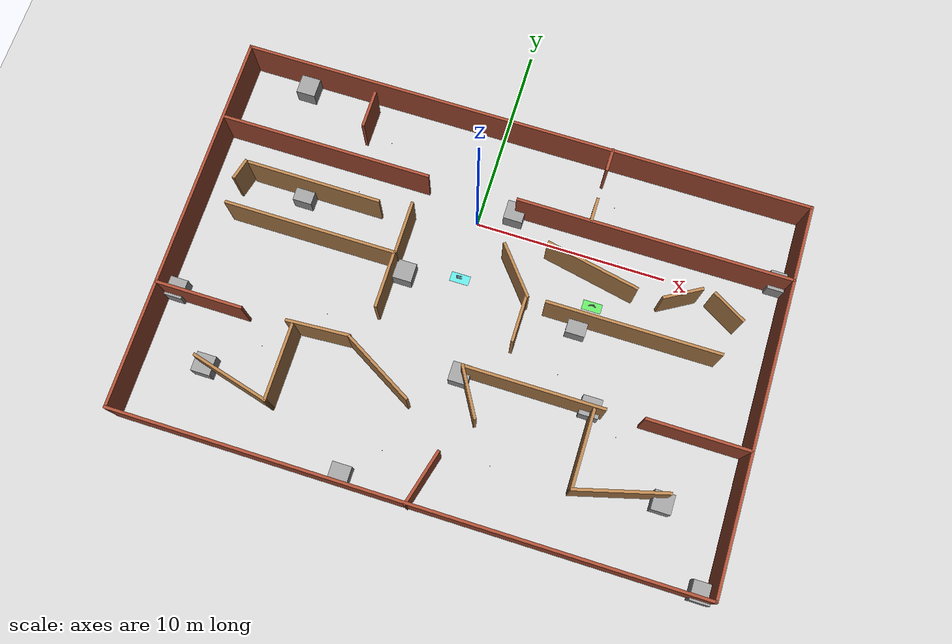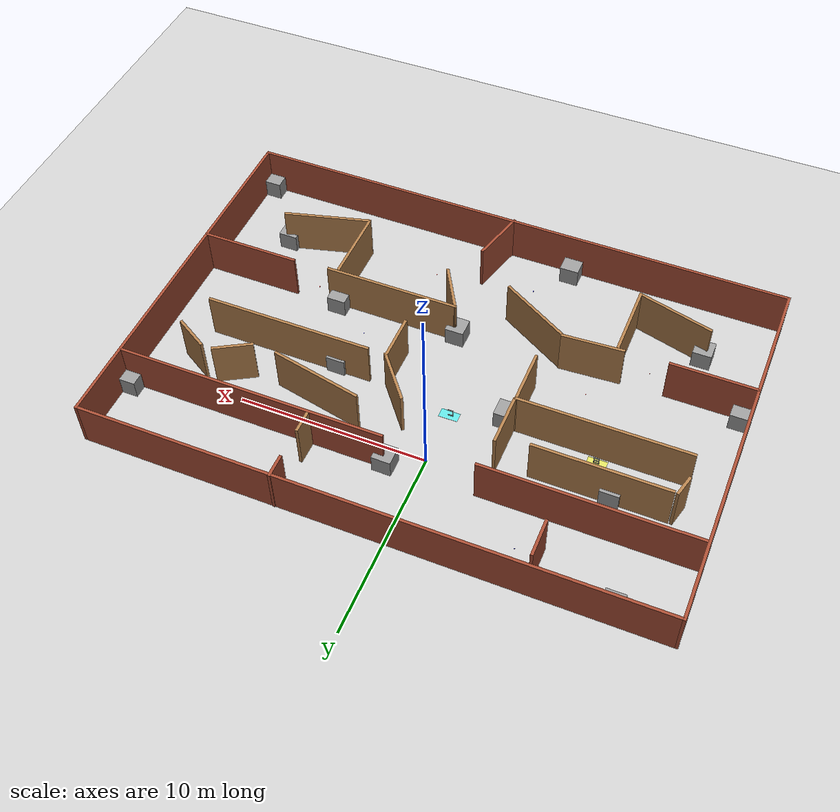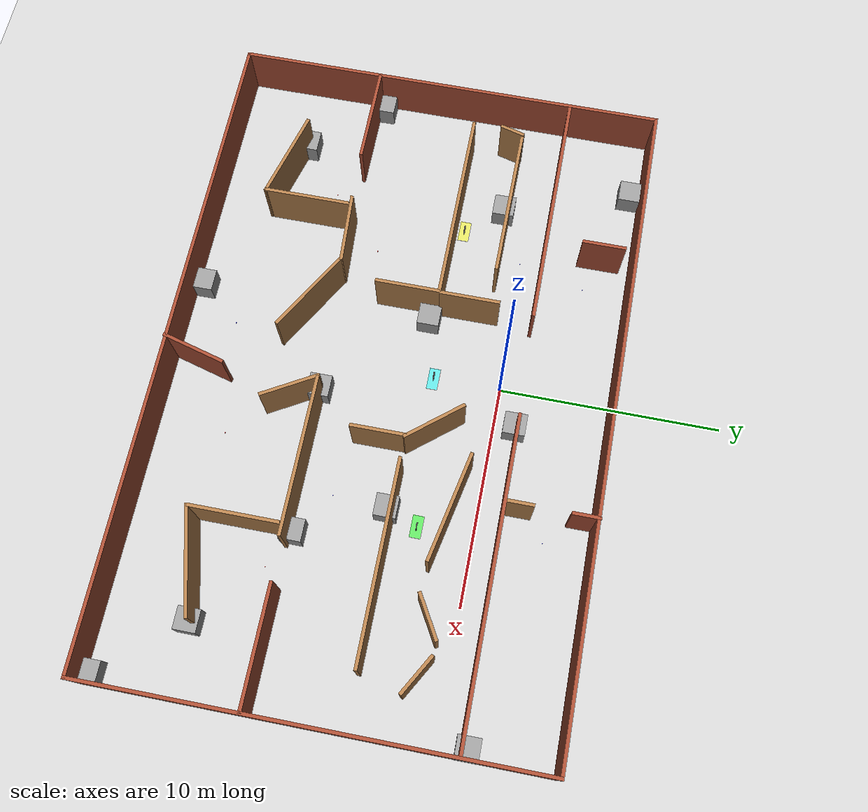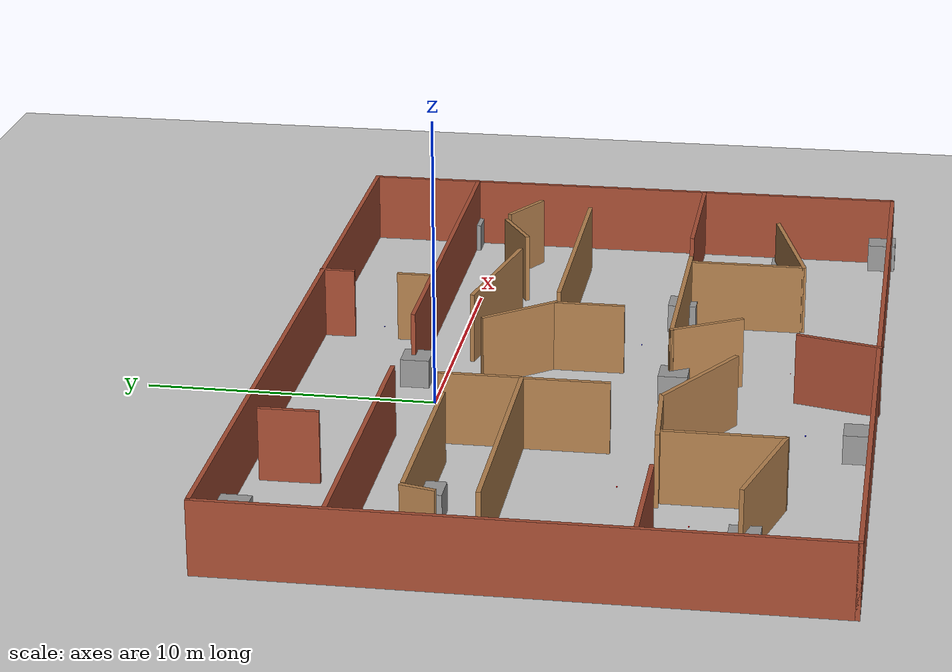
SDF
<sdf version="1.7">
 <world name="my_world">
  <model name="ground_plane">
   <static>1</static>
   <link name="link">
    <collision name="collision">
     <geometry><plane><normal>0 0 1</normal><size>100 100</size></plane></geometry>
     <surface>
      <contact><collide_bitmask>65535</collide_bitmask></contact>
      <friction><ode><mu>100</mu><mu2>50</mu2></ode></friction>
     </surface>
    </collision>
    <visual name="visual">
     <cast_shadows>0</cast_shadows>
     <geometry><plane><normal>0 0 1</normal><size>100 100</size></plane></geometry>
     <material>
      <script><uri>file://media/materials/scripts/gazebo.material</uri><name>Gazebo/Grey</name></script>
     </material>
    </visual>
   </link>
  </model>
  <light name="sun" type="directional">
   <pose>0 0 10 0 -0 0</pose>
   <diffuse>0.8 0.8 0.8 1</diffuse>
   <specular>0.2 0.2 0.2 1</specular>
   <attenuation>
    <range>1000</range>
    <constant>0.9</constant>
    <linear>0.01</linear>
    <quadratic>0.001</quadratic>
   </attenuation>
   <direction>-0.5 0.1 -0.9</direction>
   <spot><inner_angle>0</inner_angle><outer_angle>0</outer_angle><falloff>0</falloff></spot>
  </light>
  <model name="officeroom">
   <pose>0.9981 -4.92976 0 0 -0 0</pose>
   <link name="Wall_10">
    <collision name="Wall_10_Collision">
     <geometry><box><size>20 0.15 2.5</size></box></geometry>
     <pose>0 0 1.25 0 -0 0</pose>
    </collision>
    <visual name="Wall_10_Visual">
     <pose>0 0 1.25 0 -0 0</pose>
     <geometry><box><size>20 0.15 2.5</size></box></geometry>
     <material>
      <script><uri>file://media/materials/scripts/gazebo.material</uri><name>Gazebo/Bricks</name></script>
      <ambient>1 1 1 1</ambient>
     </material>
     <meta><layer>0</layer></meta>
    </visual>
    <pose>14.925 0.014919 0 0 -0 -1.57081</pose>
   </link>
   <link name="Wall_107">
    <collision name="Wall_107_Collision">
     <geometry><box><size>3.27854 0.15 2.5</size></box></geometry>
     <pose>0 0 1.25 0 -0 0</pose>
    </collision>
    <visual name="Wall_107_Visual">
     <pose>0 0 1.25 0 -0 0</pose>
     <geometry><box><size>3.27854 0.15 2.5</size></box></geometry>
     <material>
      <script><uri>file://media/materials/scripts/gazebo.material</uri><name>Gazebo/Wood</name></script>
      <ambient>1 1 1 1</ambient>
     </material>
     <meta><layer>0</layer></meta>
    </visual>
    <pose>-6.58027 -3.242 0 0 -0 -3.08207</pose>
   </link>
   <link name="Wall_109">
    <collision name="Wall_109_Collision">
     <geometry><box><size>4.5 0.15 2.5</size></box></geometry>
     <pose>0 0 1.25 0 -0 0</pose>
    </collision>
    <visual name="Wall_109_Visual">
     <pose>0 0 1.25 0 -0 0</pose>
     <geometry><box><size>4.5 0.15 2.5</size></box></geometry>
     <material>
      <script><uri>file://media/materials/scripts/gazebo.material</uri><name>Gazebo/Bricks</name></script>
      <ambient>1 1 1 1</ambient>
     </material>
     <meta><layer>0</layer></meta>
    </visual>
    <pose>-12.6881 -3.41033 0 0 -0 0</pose>
   </link>
   <link name="Wall_113">
    <collision name="Wall_113_Collision">
     <geometry><box><size>7.25 0.15 2.5</size></box></geometry>
     <pose>0 0 1.25 0 -0 0</pose>
    </collision>
    <visual name="Wall_113_Visual">
     <pose>0 0 1.25 0 -0 0</pose>
     <geometry><box><size>7.25 0.15 2.5</size></box></geometry>
     <material>
      <script><uri>file://media/materials/scripts/gazebo.material</uri><name>Gazebo/Wood</name></script>
      <ambient>1 1 1 1</ambient>
     </material>
     <meta><layer>0</layer></meta>
    </visual>
    <pose>4.22386 -2.91887 0 0 -0 0</pose>
   </link>
   <link name="Wall_115">
    <collision name="Wall_115_Collision">
     <geometry><box><size>5.25 0.15 2.5</size></box></geometry>
     <pose>0 0 1.25 0 -0 0</pose>
    </collision>
    <visual name="Wall_115_Visual">
     <pose>0 0 1.25 0 -0 0</pose>
     <geometry><box><size>5.25 0.15 2.5</size></box></geometry>
     <material>
      <script><uri>file://media/materials/scripts/gazebo.material</uri><name>Gazebo/Bricks</name></script>
      <ambient>1 1 1 1</ambient>
     </material>
     <meta><layer>0</layer></meta>
    </visual>
    <pose>12.3137 -2.7793 0 0 -0 3.14159</pose>
   </link>
   <link name="Wall_118">
    <collision name="Wall_118_Collision">
     <geometry><box><size>2.5 0.15 2.5</size></box></geometry>
     <pose>0 0 1.25 0 -0 0</pose>
    </collision>
    <visual name="Wall_118_Visual">
     <pose>0 0 1.25 0 -0 0</pose>
     <geometry><box><size>2.5 0.15 2.5</size></box></geometry>
     <material>
      <script><uri>file://media/materials/scripts/gazebo.material</uri><name>Gazebo/Wood</name></script>
      <ambient>1 1 1 1</ambient>
     </material>
     <meta><layer>0</layer></meta>
    </visual>
    <pose>2.60295 0.147134 0 0 -0 -1.5708</pose>
   </link>
   <link name="Wall_12">
    <collision name="Wall_12_Collision">
     <geometry><box><size>30 0.15 2.5</size></box></geometry>
     <pose>0 0 1.25 0 -0 0</pose>
    </collision>
    <visual name="Wall_12_Visual">
     <pose>0 0 1.25 0 -0 0</pose>
     <geometry><box><size>30 0.15 2.5</size></box></geometry>
     <material>
      <script><uri>file://media/materials/scripts/gazebo.material</uri><name>Gazebo/Bricks</name></script>
      <ambient>1 1 1 1</ambient>
     </material>
     <meta><layer>0</layer></meta>
    </visual>
    <pose>-0.000162 -9.90993 0 0 -0 3.14159</pose>
   </link>
   <link name="Wall_120">
    <collision name="Wall_120_Collision">
     <geometry><box><size>2.75 0.15 2.5</size></box></geometry>
     <pose>0 0 1.25 0 -0 0</pose>
    </collision>
    <visual name="Wall_120_Visual">
     <pose>0 0 1.25 0 -0 0</pose>
     <geometry><box><size>2.75 0.15 2.5</size></box></geometry>
     <material>
      <script><uri>file://media/materials/scripts/gazebo.material</uri><name>Gazebo/Wood</name></script>
      <ambient>1 1 1 1</ambient>
     </material>
     <meta><layer>0</layer></meta>
    </visual>
    <pose>1.32386 -4.0447 0 0 -0 -1.0472</pose>
   </link>
   <link name="Wall_125">
    <collision name="Wall_125_Collision">
     <geometry><box><size>4 0.15 2.5</size></box></geometry>
     <pose>0 0 1.25 0 -0 0</pose>
    </collision>
    <visual name="Wall_125_Visual">
     <pose>0 0 1.25 0 -0 0</pose>
     <geometry><box><size>4 0.15 2.5</size></box></geometry>
     <material>
      <script><uri>file://media/materials/scripts/gazebo.material</uri><name>Gazebo/Wood</name></script>
      <ambient>1 1 1 1</ambient>
     </material>
     <meta><layer>0</layer></meta>
    </visual>
    <pose>-7.82101 -5.406 0 0 -0 -1.5708</pose>
   </link>
   <link name="Wall_127">
    <collision name="Wall_127_Collision">
     <geometry><box><size>4 0.15 2.5</size></box></geometry>
     <pose>0 0 1.25 0 -0 0</pose>
    </collision>
    <visual name="Wall_127_Visual">
     <pose>0 0 1.25 0 -0 0</pose>
     <geometry><box><size>4 0.15 2.5</size></box></geometry>
     <material>
      <script><uri>file://media/materials/scripts/gazebo.material</uri><name>Gazebo/Wood</name></script>
      <ambient>1 1 1 1</ambient>
     </material>
     <meta><layer>0</layer></meta>
    </visual>
    <pose>7.28181 -5.01384 0 0 -0 -1.5708</pose>
   </link>
   <link name="Wall_129">
    <collision name="Wall_129_Collision">
     <geometry><box><size>4.25 0.15 2.5</size></box></geometry>
     <pose>0 0 1.25 0 -0 0</pose>
    </collision>
    <visual name="Wall_129_Visual">
     <pose>0 0 1.25 0 -0 0</pose>
     <geometry><box><size>4.25 0.15 2.5</size></box></geometry>
     <material>
      <script><uri>file://media/materials/scripts/gazebo.material</uri><name>Gazebo/Wood</name></script>
      <ambient>1 1 1 1</ambient>
     </material>
     <meta><layer>0</layer></meta>
    </visual>
    <pose>-9.80116 -6.80042 0 0 -0 2.87979</pose>
   </link>
   <link name="Wall_132">
    <collision name="Wall_132_Collision">
     <geometry><box><size>4.75 0.15 2.5</size></box></geometry>
     <pose>0 0 1.25 0 -0 0</pose>
    </collision>
    <visual name="Wall_132_Visual">
     <pose>0 0 1.25 0 -0 0</pose>
     <geometry><box><size>4.75 0.15 2.5</size></box></geometry>
     <material>
      <script><uri>file://media/materials/scripts/gazebo.material</uri><name>Gazebo/Wood</name></script>
      <ambient>1 1 1 1</ambient>
     </material>
     <meta><layer>0</layer></meta>
    </visual>
    <pose>9.51735 -6.40461 0 0 -0 0.261799</pose>
   </link>
   <link name="Wall_134">
    <collision name="Wall_134_Collision">
     <geometry><box><size>3 0.15 2.5</size></box></geometry>
     <pose>0 0 1.25 0 -0 0</pose>
    </collision>
    <visual name="Wall_134_Visual">
     <pose>0 0 1.25 0 -0 0</pose>
     <geometry><box><size>3 0.15 2.5</size></box></geometry>
     <material>
      <script><uri>file://media/materials/scripts/gazebo.material</uri><name>Gazebo/Bricks</name></script>
      <ambient>1 1 1 1</ambient>
     </material>
     <meta><layer>0</layer></meta>
    </visual>
    <pose>0.445972 -8.57754 0 0 -0 1.309</pose>
   </link>
   <link name="Wall_15">
    <collision name="Wall_15_Collision">
     <geometry><box><size>20 0.15 2.5</size></box></geometry>
     <pose>0 0 1.25 0 -0 0</pose>
    </collision>
    <visual name="Wall_15_Visual">
     <pose>0 0 1.25 0 -0 0</pose>
     <geometry><box><size>20 0.15 2.5</size></box></geometry>
     <material>
      <script><uri>file://media/materials/scripts/gazebo.material</uri><name>Gazebo/Bricks</name></script>
      <ambient>1 1 1 1</ambient>
     </material>
     <meta><layer>0</layer></meta>
    </visual>
    <pose>-14.9252 0.015073 0 0 -0 1.5708</pose>
   </link>
   <link name="Wall_2">
    <collision name="Wall_2_Collision">
     <geometry><box><size>30 0.15 2.5</size></box></geometry>
     <pose>0 0 1.25 0 -0 0</pose>
    </collision>
    <visual name="Wall_2_Visual">
     <pose>0 0 1.25 0 -0 0</pose>
     <geometry><box><size>30 0.15 2.5</size></box></geometry>
     <material>
      <script><uri>file://media/materials/scripts/gazebo.material</uri><name>Gazebo/Bricks</name></script>
      <ambient>1 1 1 1</ambient>
     </material>
     <meta><layer>0</layer></meta>
    </visual>
    <pose>0.000163 9.93976 0 0 -0 0</pose>
   </link>
   <link name="Wall_29">
    <collision name="Wall_29_Collision">
     <geometry><box><size>1.25 0.15 2.5</size></box></geometry>
     <pose>0 0 1.25 0 -0 0</pose>
    </collision>
    <visual name="Wall_29_Visual">
     <pose>0 0 1.25 0 -0 0</pose>
     <geometry><box><size>1.25 0.15 2.5</size></box></geometry>
     <material>
      <script><uri>file://media/materials/scripts/gazebo.material</uri><name>Gazebo/Bricks</name></script>
      <ambient>1 1 1 1</ambient>
     </material>
     <meta><layer>0</layer></meta>
    </visual>
    <pose>4.61028 9.42084 0 0 -0 -1.5708</pose>
   </link>
   <link name="Wall_31">
    <collision name="Wall_31_Collision">
     <geometry><box><size>1.25 0.15 2.5</size></box></geometry>
     <pose>0 0 1.25 0 -0 0</pose>
    </collision>
    <visual name="Wall_31_Visual">
     <pose>0 0 1.25 0 -0 0</pose>
     <geometry><box><size>1.25 0.15 2.5</size></box></geometry>
     <material>
      <script><uri>file://media/materials/scripts/gazebo.material</uri><name>Gazebo/Wood</name></script>
      <ambient>1 1 1 1</ambient>
     </material>
     <meta><layer>0</layer></meta>
    </visual>
    <pose>4.59016 6.61881 0 0 -0 1.5708</pose>
   </link>
   <link name="Wall_34">
    <collision name="Wall_34_Collision">
     <geometry><box><size>2 0.15 2.5</size></box></geometry>
     <pose>0 0 1.25 0 -0 0</pose>
    </collision>
    <visual name="Wall_34_Visual">
     <pose>0 0 1.25 0 -0 0</pose>
     <geometry><box><size>2 0.15 2.5</size></box></geometry>
     <material>
      <script><uri>file://media/materials/scripts/gazebo.material</uri><name>Gazebo/Bricks</name></script>
      <ambient>1 1 1 1</ambient>
     </material>
     <meta><layer>0</layer></meta>
    </visual>
    <pose>-7.92097 8.43964 0 0 -0 -1.5708</pose>
   </link>
   <link name="Wall_38">
    <collision name="Wall_38_Collision">
     <geometry><box><size>11 0.15 2.5</size></box></geometry>
     <pose>0 0 1.25 0 -0 0</pose>
    </collision>
    <visual name="Wall_38_Visual">
     <pose>0 0 1.25 0 -0 0</pose>
     <geometry><box><size>11 0.15 2.5</size></box></geometry>
     <material>
      <script><uri>file://media/materials/scripts/gazebo.material</uri><name>Gazebo/Bricks</name></script>
      <ambient>1 1 1 1</ambient>
     </material>
     <meta><layer>0</layer></meta>
    </visual>
    <pose>-9.35541 5.8262 0 0 -0 0</pose>
   </link>
   <link name="Wall_40">
    <collision name="Wall_40_Collision">
     <geometry><box><size>14.25 0.15 2.5</size></box></geometry>
     <pose>0 0 1.25 0 -0 0</pose>
    </collision>
    <visual name="Wall_40_Visual">
     <pose>0 0 1.25 0 -0 0</pose>
     <geometry><box><size>14.25 0.15 2.5</size></box></geometry>
     <material>
      <script><uri>file://media/materials/scripts/gazebo.material</uri><name>Gazebo/Bricks</name></script>
      <ambient>1 1 1 1</ambient>
     </material>
     <meta><layer>0</layer></meta>
    </visual>
    <pose>7.83962 5.98375 0 0 -0 3.14159</pose>
   </link>
   <link name="Wall_46">
    <collision name="Wall_46_Collision">
     <geometry><box><size>7 0.15 2.5</size></box></geometry>
     <pose>0 0 1.25 0 -0 0</pose>
    </collision>
    <visual name="Wall_46_Visual">
     <pose>0 0 1.25 0 -0 0</pose>
     <geometry><box><size>7 0.15 2.5</size></box></geometry>
     <material>
      <script><uri>file://media/materials/scripts/gazebo.material</uri><name>Gazebo/Wood</name></script>
      <ambient>1 1 1 1</ambient>
     </material>
     <meta><layer>0</layer></meta>
    </visual>
    <pose>-9.30884 3.8355 0 0 -0 -0.004163</pose>
   </link>
   <link name="Wall_49">
    <collision name="Wall_49_Collision">
     <geometry><box><size>1.17019 0.15 2.5</size></box></geometry>
     <pose>0 0 1.25 0 -0 0</pose>
    </collision>
    <visual name="Wall_49_Visual">
     <pose>0 0 1.25 0 -0 0</pose>
     <geometry><box><size>1.17019 0.15 2.5</size></box></geometry>
     <material>
      <script><uri>file://media/materials/scripts/gazebo.material</uri><name>Gazebo/Wood</name></script>
      <ambient>1 1 1 1</ambient>
     </material>
     <meta><layer>0</layer></meta>
    </visual>
    <pose>-13.076 3.35727 0 0 -0 -1.82702</pose>
   </link>
   <link name="Wall_57">
    <collision name="Wall_57_Collision">
     <geometry><box><size>2.75 0.15 2.5</size></box></geometry>
     <pose>0 0 1.25 0 -0 0</pose>
    </collision>
    <visual name="Wall_57_Visual">
     <pose>0 0 1.25 0 -0 0</pose>
     <geometry><box><size>2.75 0.15 2.5</size></box></geometry>
     <material>
      <script><uri>file://media/materials/scripts/gazebo.material</uri><name>Gazebo/Wood</name></script>
      <ambient>1 1 1 1</ambient>
     </material>
     <meta><layer>0</layer></meta>
    </visual>
    <pose>-4.21161 2.89682 0 0 -0 1.5708</pose>
   </link>
   <link name="Wall_59">
    <collision name="Wall_59_Collision">
     <geometry><box><size>5 0.15 2.5</size></box></geometry>
     <pose>0 0 1.25 0 -0 0</pose>
    </collision>
    <visual name="Wall_59_Visual">
     <pose>0 0 1.25 0 -0 0</pose>
     <geometry><box><size>5 0.15 2.5</size></box></geometry>
     <material>
      <script><uri>file://media/materials/scripts/gazebo.material</uri><name>Gazebo/Wood</name></script>
      <ambient>1 1 1 1</ambient>
     </material>
     <meta><layer>0</layer></meta>
    </visual>
    <pose>5.28704 3.77735 0 0 -0 -0.202428</pose>
   </link>
   <link name="Wall_60">
    <collision name="Wall_60_Collision">
     <geometry><box><size>2.1 0.15 2.5</size></box></geometry>
     <pose>0 0 1.25 0 -0 0</pose>
    </collision>
    <visual name="Wall_60_Visual">
     <pose>0 0 1.25 0 -0 0</pose>
     <geometry><box><size>2.1 0.15 2.5</size></box></geometry>
     <material>
      <script><uri>file://media/materials/scripts/gazebo.material</uri><name>Gazebo/Wood</name></script>
      <ambient>1 1 1 1</ambient>
     </material>
     <meta><layer>0</layer></meta>
    </visual>
    <pose>9.88652 3.73459 0 0 -0 0.527727</pose>
   </link>
   <link name="Wall_61">
    <collision name="Wall_61_Collision">
     <geometry><box><size>2 0.15 2.5</size></box></geometry>
     <pose>0 0 1.25 0 -0 0</pose>
    </collision>
    <visual name="Wall_61_Visual">
     <pose>0 0 1.25 0 -0 0</pose>
     <geometry><box><size>2 0.15 2.5</size></box></geometry>
     <material>
      <script><uri>file://media/materials/scripts/gazebo.material</uri><name>Gazebo/Wood</name></script>
      <ambient>1 1 1 1</ambient>
     </material>
     <meta><layer>0</layer></meta>
    </visual>
    <pose>12.2003 3.7238 0 0 -0 -0.523599</pose>
   </link>
   <link name="Wall_66">
    <collision name="Wall_66_Collision">
     <geometry><box><size>3.01901 0.15 2.5</size></box></geometry>
     <pose>0 0 1.25 0 -0 0</pose>
    </collision>
    <visual name="Wall_66_Visual">
     <pose>0 0 1.25 0 -0 0</pose>
     <geometry><box><size>3.01901 0.15 2.5</size></box></geometry>
     <material>
      <script><uri>file://media/materials/scripts/gazebo.material</uri><name>Gazebo/Wood</name></script>
      <ambient>1 1 1 1</ambient>
     </material>
     <meta><layer>0</layer></meta>
    </visual>
    <pose>1.74226 2.43334 0 0 -0 2.25548</pose>
   </link>
   <link name="Wall_68">
    <collision name="Wall_68_Collision">
     <geometry><box><size>9 0.15 2.5</size></box></geometry>
     <pose>0 0 1.25 0 -0 0</pose>
    </collision>
    <visual name="Wall_68_Visual">
     <pose>0 0 1.25 0 -0 0</pose>
     <geometry><box><size>9 0.15 2.5</size></box></geometry>
     <material>
      <script><uri>file://media/materials/scripts/gazebo.material</uri><name>Gazebo/Wood</name></script>
      <ambient>1 1 1 1</ambient>
     </material>
     <meta><layer>0</layer></meta>
    </visual>
    <pose>-8.68528 1.49923 0 0 -0 3.14159</pose>
   </link>
   <link name="Wall_72">
    <collision name="Wall_72_Collision">
     <geometry><box><size>8.9356 0.15 2.5</size></box></geometry>
     <pose>0 0 1.25 0 -0 0</pose>
    </collision>
    <visual name="Wall_72_Visual">
     <pose>0 0 1.25 0 -0 0</pose>
     <geometry><box><size>8.9356 0.15 2.5</size></box></geometry>
     <material>
      <script><uri>file://media/materials/scripts/gazebo.material</uri><name>Gazebo/Wood</name></script>
      <ambient>1 1 1 1</ambient>
     </material>
     <meta><layer>0</layer></meta>
    </visual>
    <pose>8.04226 1.32213 0 0 -0 3.14159</pose>
   </link>
   <link name="Wall_75">
    <collision name="Wall_75_Collision">
     <geometry><box><size>3 0.15 2.5</size></box></geometry>
     <pose>0 0 1.25 0 -0 0</pose>
    </collision>
    <visual name="Wall_75_Visual">
     <pose>0 0 1.25 0 -0 0</pose>
     <geometry><box><size>3 0.15 2.5</size></box></geometry>
     <material>
      <script><uri>file://media/materials/scripts/gazebo.material</uri><name>Gazebo/Wood</name></script>
      <ambient>1 1 1 1</ambient>
     </material>
     <meta><layer>0</layer></meta>
    </visual>
    <pose>-4.26028 0.074229 0 0 -0 -1.5708</pose>
   </link>
   <link name="Wall_81">
    <collision name="Wall_81_Collision">
     <geometry><box><size>4.25 0.15 2.5</size></box></geometry>
     <pose>0 0 1.25 0 -0 0</pose>
    </collision>
    <visual name="Wall_81_Visual">
     <pose>0 0 1.25 0 -0 0</pose>
     <geometry><box><size>4.25 0.15 2.5</size></box></geometry>
     <material>
      <script><uri>file://media/materials/scripts/gazebo.material</uri><name>Gazebo/Wood</name></script>
      <ambient>1 1 1 1</ambient>
     </material>
     <meta><layer>0</layer></meta>
    </visual>
    <pose>-3.1969 -4.22048 0 0 -0 -0.523599</pose>
   </link>
   <static>1</static>
  </model>
  <gravity>0 0 -9.8</gravity>
  <magnetic_field>6e-06 2.3e-05 -4.2e-05</magnetic_field>
  <atmosphere type="adiabatic"/>
  <physics type="ode">
   <max_step_size>0.002</max_step_size>
   <real_time_factor>1</real_time_factor>
   <real_time_update_rate>500</real_time_update_rate>
  </physics>
  <scene><ambient>0.4 0.4 0.4 1</ambient><background>0.7 0.7 0.7 1</background><shadows>1</shadows></scene>
  <audio><device>default</device></audio>
  <spherical_coordinates>
   <surface_model>EARTH_WGS84</surface_model>
   <latitude_deg>0</latitude_deg>
   <longitude_deg>0</longitude_deg>
   <elevation>0</elevation>
   <heading_deg>0</heading_deg>
  </spherical_coordinates>
  <model name="red_cube_1">
   <pose>-5.8561 -6.88522 0.014993 0 -0 0</pose>
   <link name="link">
    <inertial>
     <mass>0.005</mass>
     <pose>-5.8561 -6.88522 0 0 -0 0</pose>
     <inertia><ixx>1</ixx><ixy>0</ixy><ixz>0</ixz><iyy>1</iyy><iyz>0</iyz><izz>1</izz></inertia>
    </inertial>
    <collision name="collision">
     <geometry><box><size>0.03 0.03 0.03</size></box></geometry>
     <surface>
      <contact>
       <ode>
        <soft_cfm>0.001</soft_cfm>
        <soft_erp>0.2</soft_erp>
        <max_vel>0.1</max_vel>
        <min_depth>0.001</min_depth>
       </ode>
      </contact>
      <friction><ode><mu>0.8</mu><mu2>0.8</mu2></ode></friction>
     </surface>
    </collision>
    <visual name="visual">
     <geometry><box><size>0.03 0.03 0.03</size></box></geometry>
     <material><ambient>1 0 0 1</ambient><diffuse>1 0 0 1</diffuse></material>
    </visual>
   </link>
  </model>
  <model name="red_cube_2">
   <pose>7.51245 0.11664 0.014993 0 -0 0</pose>
   <link name="link">
    <inertial>
     <mass>0.005</mass>
     <pose>7.51245 0.11664 0 0 -0 0</pose>
     <inertia><ixx>1</ixx><ixy>0</ixy><ixz>0</ixz><iyy>1</iyy><iyz>0</iyz><izz>1</izz></inertia>
    </inertial>
    <collision name="collision">
     <geometry><box><size>0.03 0.03 0.03</size></box></geometry>
     <surface>
      <contact>
       <ode>
        <soft_cfm>0.001</soft_cfm>
        <soft_erp>0.2</soft_erp>
        <max_vel>0.1</max_vel>
        <min_depth>0.001</min_depth>
       </ode>
      </contact>
      <friction><ode><mu>0.8</mu><mu2>0.8</mu2></ode></friction>
     </surface>
    </collision>
    <visual name="visual">
     <geometry><box><size>0.03 0.03 0.03</size></box></geometry>
     <material><ambient>1 0 0 1</ambient><diffuse>1 0 0 1</diffuse></material>
    </visual>
   </link>
  </model>
  <model name="red_cube_3">
   <pose>-8.46316 -9.42288 0.014993 0 -0 0</pose>
   <link name="link">
    <inertial>
     <mass>0.005</mass>
     <pose>-8.46316 -9.42288 0 0 -0 0</pose>
     <inertia><ixx>1</ixx><ixy>0</ixy><ixz>0</ixz><iyy>1</iyy><iyz>0</iyz><izz>1</izz></inertia>
    </inertial>
    <collision name="collision">
     <geometry><box><size>0.03 0.03 0.03</size></box></geometry>
     <surface>
      <contact>
       <ode>
        <soft_cfm>0.001</soft_cfm>
        <soft_erp>0.2</soft_erp>
        <max_vel>0.1</max_vel>
        <min_depth>0.001</min_depth>
       </ode>
      </contact>
      <friction><ode><mu>0.8</mu><mu2>0.8</mu2></ode></friction>
     </surface>
    </collision>
    <visual name="visual">
     <geometry><box><size>0.03 0.03 0.03</size></box></geometry>
     <material><ambient>1 0 0 1</ambient><diffuse>1 0 0 1</diffuse></material>
    </visual>
   </link>
  </model>
  <model name="red_cube_4">
   <pose>9.82172 -8.54889 0.014993 0 -0 0</pose>
   <link name="link">
    <inertial>
     <mass>0.005</mass>
     <pose>9.82172 -8.54889 0 0 -0 0</pose>
     <inertia><ixx>1</ixx><ixy>0</ixy><ixz>0</ixz><iyy>1</iyy><iyz>0</iyz><izz>1</izz></inertia>
    </inertial>
    <collision name="collision">
     <geometry><box><size>0.03 0.03 0.03</size></box></geometry>
     <surface>
      <contact>
       <ode>
        <soft_cfm>0.001</soft_cfm>
        <soft_erp>0.2</soft_erp>
        <max_vel>0.1</max_vel>
        <min_depth>0.001</min_depth>
       </ode>
      </contact>
      <friction><ode><mu>0.8</mu><mu2>0.8</mu2></ode></friction>
     </surface>
    </collision>
    <visual name="visual">
     <geometry><box><size>0.03 0.03 0.03</size></box></geometry>
     <material><ambient>1 0 0 1</ambient><diffuse>1 0 0 1</diffuse></material>
    </visual>
   </link>
  </model>
  <model name="red_cube_5">
   <pose>4.30707 -11.77404 0.014993 0 -0 0</pose>
   <link name="link">
    <inertial>
     <mass>0.005</mass>
     <pose>4.30707 -11.77404 0 0 -0 0</pose>
     <inertia><ixx>1</ixx><ixy>0</ixy><ixz>0</ixz><iyy>1</iyy><iyz>0</iyz><izz>1</izz></inertia>
    </inertial>
    <collision name="collision">
     <geometry><box><size>0.03 0.03 0.03</size></box></geometry>
     <surface>
      <contact>
       <ode>
        <soft_cfm>0.001</soft_cfm>
        <soft_erp>0.2</soft_erp>
        <max_vel>0.1</max_vel>
        <min_depth>0.001</min_depth>
       </ode>
      </contact>
      <friction><ode><mu>0.8</mu><mu2>0.8</mu2></ode></friction>
     </surface>
    </collision>
    <visual name="visual">
     <geometry><box><size>0.03 0.03 0.03</size></box></geometry>
     <material><ambient>1 0 0 1</ambient><diffuse>1 0 0 1</diffuse></material>
    </visual>
   </link>
  </model>
  <model name="blue_cube_1">
   <pose>-6.44644 -0.10549 0.014993 0 -0 0</pose>
   <link name="link">
    <inertial>
     <mass>0.005</mass>
     <pose>-6.44644 -0.10549 0 0 -0 0</pose>
     <inertia><ixx>1</ixx><ixy>0</ixy><ixz>0</ixz><iyy>1</iyy><iyz>0</iyz><izz>1</izz></inertia>
    </inertial>
    <collision name="collision">
     <geometry><box><size>0.03 0.03 0.03</size></box></geometry>
     <surface>
      <contact>
       <ode>
        <soft_cfm>0.001</soft_cfm>
        <soft_erp>0.2</soft_erp>
        <max_vel>0.1</max_vel>
        <min_depth>0.001</min_depth>
       </ode>
      </contact>
      <friction><ode><mu>0.8</mu><mu2>0.8</mu2></ode></friction>
     </surface>
    </collision>
    <visual name="visual">
     <geometry><box><size>0.03 0.03 0.03</size></box></geometry>
     <material><ambient>0 0 1 1</ambient><diffuse>0 0 1 1</diffuse></material>
    </visual>
   </link>
  </model>
  <model name="blue_cube_2">
   <pose>-5.67696 2.99105 0.014993 0 -0 0</pose>
   <link name="link">
    <inertial>
     <mass>0.005</mass>
     <pose>-5.67696 2.99105 0 0 -0 0</pose>
     <inertia><ixx>1</ixx><ixy>0</ixy><ixz>0</ixz><iyy>1</iyy><iyz>0</iyz><izz>1</izz></inertia>
    </inertial>
    <collision name="collision">
     <geometry><box><size>0.03 0.03 0.03</size></box></geometry>
     <surface>
      <contact>
       <ode>
        <soft_cfm>0.001</soft_cfm>
        <soft_erp>0.2</soft_erp>
        <max_vel>0.1</max_vel>
        <min_depth>0.001</min_depth>
       </ode>
      </contact>
      <friction><ode><mu>0.8</mu><mu2>0.8</mu2></ode></friction>
     </surface>
    </collision>
    <visual name="visual">
     <geometry><box><size>0.03 0.03 0.03</size></box></geometry>
     <material><ambient>0 0 1 1</ambient><diffuse>0 0 1 1</diffuse></material>
    </visual>
   </link>
  </model>
  <model name="blue_cube_3">
   <pose>6.2103 -6.38109 0.014993 0 -0 0</pose>
   <link name="link">
    <inertial>
     <mass>0.005</mass>
     <pose>6.2103 -6.38109 0 0 -0 0</pose>
     <inertia><ixx>1</ixx><ixy>0</ixy><ixz>0</ixz><iyy>1</iyy><iyz>0</iyz><izz>1</izz></inertia>
    </inertial>
    <collision name="collision">
     <geometry><box><size>0.03 0.03 0.03</size></box></geometry>
     <surface>
      <contact>
       <ode>
        <soft_cfm>0.001</soft_cfm>
        <soft_erp>0.2</soft_erp>
        <max_vel>0.1</max_vel>
        <min_depth>0.001</min_depth>
       </ode>
      </contact>
      <friction><ode><mu>0.8</mu><mu2>0.8</mu2></ode></friction>
     </surface>
    </collision>
    <visual name="visual">
     <geometry><box><size>0.03 0.03 0.03</size></box></geometry>
     <material><ambient>0 0 1 1</ambient><diffuse>0 0 1 1</diffuse></material>
    </visual>
   </link>
  </model>
  <model name="blue_cube_4">
   <pose>6.59001 3.00444 0.014993 0 -0 0</pose>
   <link name="link">
    <inertial>
     <mass>0.005</mass>
     <pose>6.59001 3.00444 0 0 -0 0</pose>
     <inertia><ixx>1</ixx><ixy>0</ixy><ixz>0</ixz><iyy>1</iyy><iyz>0</iyz><izz>1</izz></inertia>
    </inertial>
    <collision name="collision">
     <geometry><box><size>0.03 0.03 0.03</size></box></geometry>
     <surface>
      <contact>
       <ode>
        <soft_cfm>0.001</soft_cfm>
        <soft_erp>0.2</soft_erp>
        <max_vel>0.1</max_vel>
        <min_depth>0.001</min_depth>
       </ode>
      </contact>
      <friction><ode><mu>0.8</mu><mu2>0.8</mu2></ode></friction>
     </surface>
    </collision>
    <visual name="visual">
     <geometry><box><size>0.03 0.03 0.03</size></box></geometry>
     <material><ambient>0 0 1 1</ambient><diffuse>0 0 1 1</diffuse></material>
    </visual>
   </link>
  </model>
  <model name="blue_cube_5">
   <pose>-0.98574 -12.5994 0.014993 0 -0 0</pose>
   <link name="link">
    <inertial>
     <mass>0.005</mass>
     <pose>-0.98574 -12.5994 0 0 -0 0</pose>
     <inertia><ixx>1</ixx><ixy>0</ixy><ixz>0</ixz><iyy>1</iyy><iyz>0</iyz><izz>1</izz></inertia>
    </inertial>
    <collision name="collision">
     <geometry><box><size>0.03 0.03 0.03</size></box></geometry>
     <surface>
      <contact>
       <ode>
        <soft_cfm>0.001</soft_cfm>
        <soft_erp>0.2</soft_erp>
        <max_vel>0.1</max_vel>
        <min_depth>0.001</min_depth>
       </ode>
      </contact>
      <friction><ode><mu>0.8</mu><mu2>0.8</mu2></ode></friction>
     </surface>
    </collision>
    <visual name="visual">
     <geometry><box><size>0.03 0.03 0.03</size></box></geometry>
     <material><ambient>0 0 1 1</ambient><diffuse>0 0 1 1</diffuse></material>
    </visual>
   </link>
  </model>
  <model name="zone_a">
   <static>1</static>
   <pose>6.88601 -2.48302 0.01 0 -0 0</pose>
   <link name="base">
    <visual name="visual">
     <geometry><box><size>1 0.5 0.02</size></box></geometry>
     <material><ambient>0 1 0 0.5</ambient><diffuse>0 1 0 0.5</diffuse></material>
    </visual>
   </link>
   <link name="letter_A_1">
    <pose>-0.1 0 0.22 0 0.4 0</pose>
    <visual name="v">
     <geometry><box><size>0.04 0.04 0.4</size></box></geometry>
     <material><ambient>0 0 0 1</ambient><diffuse>0 0 0 1</diffuse></material>
    </visual>
   </link>
   <link name="letter_A_2">
    <pose>0.1 0 0.22 0 -0.4 0</pose>
    <visual name="v">
     <geometry><box><size>0.04 0.04 0.4</size></box></geometry>
     <material><ambient>0 0 0 1</ambient><diffuse>0 0 0 1</diffuse></material>
    </visual>
   </link>
   <link name="letter_A_3">
    <pose>0 0 0.25 0 -0 0</pose>
    <visual name="v">
     <geometry><box><size>0.15 0.04 0.04</size></box></geometry>
     <material><ambient>0 0 0 1</ambient><diffuse>0 0 0 1</diffuse></material>
    </visual>
   </link>
  </model>
  <model name="zone_b">
   <static>1</static>
   <pose>-7.67895 -3.01781 0.01 0 -0 0</pose>
   <link name="base">
    <visual name="visual">
     <geometry><box><size>1 0.5 0.02</size></box></geometry>
     <material><ambient>1 1 0 0.5</ambient><diffuse>1 1 0 0.5</diffuse></material>
    </visual>
   </link>
   <link name="letter_B_vertical_stroke">
    <pose>-0.1 0 0.2 0 -0 0</pose>
    <visual name="v">
     <geometry><box><size>0.04 0.04 0.4</size></box></geometry>
     <material><ambient>0 0 0 1</ambient><diffuse>0 0 0 1</diffuse></material>
    </visual>
   </link>
   <link name="letter_B_top_horizontal">
    <pose>0.05 0 0.38 0 -0 0</pose>
    <visual name="v">
     <geometry><box><size>0.25 0.04 0.04</size></box></geometry>
     <material><ambient>0 0 0 1</ambient><diffuse>0 0 0 1</diffuse></material>
    </visual>
   </link>
   <link name="letter_B_middle_horizontal">
    <pose>0.05 0 0.2 0 -0 0</pose>
    <visual name="v">
     <geometry><box><size>0.25 0.04 0.04</size></box></geometry>
     <material><ambient>0 0 0 1</ambient><diffuse>0 0 0 1</diffuse></material>
    </visual>
   </link>
   <link name="letter_B_bottom_horizontal">
    <pose>0.05 0 0.02 0 -0 0</pose>
    <visual name="v">
     <geometry><box><size>0.25 0.04 0.04</size></box></geometry>
     <material><ambient>0 0 0 1</ambient><diffuse>0 0 0 1</diffuse></material>
    </visual>
   </link>
   <link name="letter_B_top_vertical_stroke">
    <pose>0.15 0 0.29 0 -0 0</pose>
    <visual name="v">
     <geometry><box><size>0.04 0.04 0.2</size></box></geometry>
     <material><ambient>0 0 0 1</ambient><diffuse>0 0 0 1</diffuse></material>
    </visual>
   </link>
   <link name="letter_B_bottom_vertical_stroke">
    <pose>0.15 0 0.11 0 -0 0</pose>
    <visual name="v">
     <geometry><box><size>0.04 0.04 0.2</size></box></geometry>
     <material><ambient>0 0 0 1</ambient><diffuse>0 0 0 1</diffuse></material>
    </visual>
   </link>
  </model>
  <model name="zone_c">
   <static>1</static>
   <pose>0.015646 -3.05996 0.01 0 -0 0</pose>
   <link name="base">
    <visual name="visual">
     <geometry><box><size>1 0.5 0.02</size></box></geometry>
     <material><ambient>0 1 1 0.5</ambient><diffuse>0 1 1 0.5</diffuse></material>
    </visual>
   </link>
   <link name="letter_C_1">
    <pose>-0.05 0 0.38 0 -0 0</pose>
    <visual name="v">
     <geometry><box><size>0.3 0.04 0.04</size></box></geometry>
     <material><ambient>0 0 0 1</ambient><diffuse>0 0 0 1</diffuse></material>
    </visual>
   </link>
   <link name="letter_C_2">
    <pose>-0.05 0 0.02 0 -0 0</pose>
    <visual name="v">
     <geometry><box><size>0.3 0.04 0.04</size></box></geometry>
     <material><ambient>0 0 0 1</ambient><diffuse>0 0 0 1</diffuse></material>
    </visual>
   </link>
   <link name="letter_C_3">
    <pose>-0.18 0 0.2 0 -0 0</pose>
    <visual name="v">
     <geometry><box><size>0.04 0.04 0.4</size></box></geometry>
     <material><ambient>0 0 0 1</ambient><diffuse>0 0 0 1</diffuse></material>
    </visual>
   </link>
  </model>
  <plugin name="gazebo_link_attacher" filename="libgazebo_link_attacher.so"/>
  <plugin name="gazebo_ros_state" filename="libgazebo_ros_state.so">
   <ros><namespace>/gazebo</namespace></ros>
   <update_rate>20.0</update_rate>
  </plugin>
  <model name="Untitled">
   <link name="link_0">
    <inertial>
     <mass>1</mass>
     <inertia>
      <ixx>0.166667</ixx>
      <ixy>0</ixy>
      <ixz>0</ixz>
      <iyy>0.166667</iyy>
      <iyz>0</iyz>
      <izz>0.166667</izz>
     </inertia>
    </inertial>
    <pose>-11.7361 10.376 0 0 -0 0</pose>
    <visual name="visual">
     <geometry><box><size>1 1 1</size></box></geometry>
     <material>
      <lighting>1</lighting>
      <script><uri>file://media/materials/scripts/gazebo.material</uri><name>Gazebo/Grey</name></script>
      <shader type="pixel"/>
     </material>
    </visual>
    <collision name="collision">
     <geometry><box><size>1 1 1</size></box></geometry>
     <surface>
      <friction>
       <ode><mu>1</mu><mu2>1</mu2><fdir1>0 0 0</fdir1><slip1>0</slip1><slip2>0</slip2></ode>
       <torsional>
        <coefficient>1</coefficient>
        <patch_radius>0</patch_radius>
        <surface_radius>0</surface_radius>
        <use_patch_radius>1</use_patch_radius>
        <ode><slip>0</slip></ode>
       </torsional>
      </friction>
      <bounce><restitution_coefficient>0</restitution_coefficient><threshold>1e+06</threshold></bounce>
      <contact>
       <collide_without_contact>0</collide_without_contact>
       <collide_without_contact_bitmask>1</collide_without_contact_bitmask>
       <collide_bitmask>1</collide_bitmask>
       <ode>
        <soft_cfm>0</soft_cfm>
        <soft_erp>0.2</soft_erp>
        <kp>1e+13</kp>
        <kd>1</kd>
        <max_vel>0.01</max_vel>
        <min_depth>0</min_depth>
       </ode>
       <bullet>
        <split_impulse>1</split_impulse>
        <split_impulse_penetration_threshold>-0.01</split_impulse_penetration_threshold>
        <soft_cfm>0</soft_cfm>
        <soft_erp>0.2</soft_erp>
        <kp>1e+13</kp>
        <kd>1</kd>
       </bullet>
      </contact>
     </surface>
    </collision>
   </link>
   <link name="link_1">
    <inertial>
     <mass>1</mass>
     <inertia>
      <ixx>0.166667</ixx>
      <ixy>0</ixy>
      <ixz>0</ixz>
      <iyy>0.166667</iyy>
      <iyz>0</iyz>
      <izz>0.166667</izz>
     </inertia>
    </inertial>
    <pose>-9.86873 4.59948 0 0 -0 0</pose>
    <visual name="visual">
     <geometry><box><size>1 1 1</size></box></geometry>
     <material>
      <lighting>1</lighting>
      <script><uri>file://media/materials/scripts/gazebo.material</uri><name>Gazebo/Grey</name></script>
      <shader type="pixel"/>
     </material>
    </visual>
    <collision name="collision">
     <geometry><box><size>1 1 1</size></box></geometry>
     <surface>
      <friction>
       <ode><mu>1</mu><mu2>1</mu2><fdir1>0 0 0</fdir1><slip1>0</slip1><slip2>0</slip2></ode>
       <torsional>
        <coefficient>1</coefficient>
        <patch_radius>0</patch_radius>
        <surface_radius>0</surface_radius>
        <use_patch_radius>1</use_patch_radius>
        <ode><slip>0</slip></ode>
       </torsional>
      </friction>
      <bounce><restitution_coefficient>0</restitution_coefficient><threshold>1e+06</threshold></bounce>
      <contact>
       <collide_without_contact>0</collide_without_contact>
       <collide_without_contact_bitmask>1</collide_without_contact_bitmask>
       <collide_bitmask>1</collide_bitmask>
       <ode>
        <soft_cfm>0</soft_cfm>
        <soft_erp>0.2</soft_erp>
        <kp>1e+13</kp>
        <kd>1</kd>
        <max_vel>0.01</max_vel>
        <min_depth>0</min_depth>
       </ode>
       <bullet>
        <split_impulse>1</split_impulse>
        <split_impulse_penetration_threshold>-0.01</split_impulse_penetration_threshold>
        <soft_cfm>0</soft_cfm>
        <soft_erp>0.2</soft_erp>
        <kp>1e+13</kp>
        <kd>1</kd>
       </bullet>
      </contact>
     </surface>
    </collision>
   </link>
   <link name="link_10">
    <inertial>
     <mass>1</mass>
     <inertia>
      <ixx>0.166667</ixx>
      <ixy>0</ixy>
      <ixz>0</ixz>
      <iyy>0.166667</iyy>
      <iyz>0</iyz>
      <izz>0.166667</izz>
     </inertia>
    </inertial>
    <pose>11.7248 -5.10078 0 0 -0 0</pose>
    <visual name="visual">
     <geometry><box><size>1 1 1</size></box></geometry>
     <material>
      <lighting>1</lighting>
      <script><uri>file://media/materials/scripts/gazebo.material</uri><name>Gazebo/Grey</name></script>
      <shader type="pixel"/>
     </material>
    </visual>
    <collision name="collision">
     <geometry><box><size>1 1 1</size></box></geometry>
     <surface>
      <friction>
       <ode><mu>1</mu><mu2>1</mu2><fdir1>0 0 0</fdir1><slip1>0</slip1><slip2>0</slip2></ode>
       <torsional>
        <coefficient>1</coefficient>
        <patch_radius>0</patch_radius>
        <surface_radius>0</surface_radius>
        <use_patch_radius>1</use_patch_radius>
        <ode><slip>0</slip></ode>
       </torsional>
      </friction>
      <bounce><restitution_coefficient>0</restitution_coefficient><threshold>1e+06</threshold></bounce>
      <contact>
       <collide_without_contact>0</collide_without_contact>
       <collide_without_contact_bitmask>1</collide_without_contact_bitmask>
       <collide_bitmask>1</collide_bitmask>
       <ode>
        <soft_cfm>0</soft_cfm>
        <soft_erp>0.2</soft_erp>
        <kp>1e+13</kp>
        <kd>1</kd>
        <max_vel>0.01</max_vel>
        <min_depth>0</min_depth>
       </ode>
       <bullet>
        <split_impulse>1</split_impulse>
        <split_impulse_penetration_threshold>-0.01</split_impulse_penetration_threshold>
        <soft_cfm>0</soft_cfm>
        <soft_erp>0.2</soft_erp>
        <kp>1e+13</kp>
        <kd>1</kd>
       </bullet>
      </contact>
     </surface>
    </collision>
   </link>
   <link name="link_11">
    <inertial>
     <mass>1</mass>
     <inertia>
      <ixx>0.166667</ixx>
      <ixy>0</ixy>
      <ixz>0</ixz>
      <iyy>0.166667</iyy>
      <iyz>0</iyz>
      <izz>0.166667</izz>
     </inertia>
    </inertial>
    <pose>-3.47257 -8.45059 0 0 -0 0</pose>
    <visual name="visual">
     <geometry><box><size>1 1 1</size></box></geometry>
     <material>
      <lighting>1</lighting>
      <script><uri>file://media/materials/scripts/gazebo.material</uri><name>Gazebo/Grey</name></script>
      <shader type="pixel"/>
     </material>
    </visual>
    <collision name="collision">
     <geometry><box><size>1 1 1</size></box></geometry>
     <surface>
      <friction>
       <ode><mu>1</mu><mu2>1</mu2><fdir1>0 0 0</fdir1><slip1>0</slip1><slip2>0</slip2></ode>
       <torsional>
        <coefficient>1</coefficient>
        <patch_radius>0</patch_radius>
        <surface_radius>0</surface_radius>
        <use_patch_radius>1</use_patch_radius>
        <ode><slip>0</slip></ode>
       </torsional>
      </friction>
      <bounce><restitution_coefficient>0</restitution_coefficient><threshold>1e+06</threshold></bounce>
      <contact>
       <collide_without_contact>0</collide_without_contact>
       <collide_without_contact_bitmask>1</collide_without_contact_bitmask>
       <collide_bitmask>1</collide_bitmask>
       <ode>
        <soft_cfm>0</soft_cfm>
        <soft_erp>0.2</soft_erp>
        <kp>1e+13</kp>
        <kd>1</kd>
        <max_vel>0.01</max_vel>
        <min_depth>0</min_depth>
       </ode>
       <bullet>
        <split_impulse>1</split_impulse>
        <split_impulse_penetration_threshold>-0.01</split_impulse_penetration_threshold>
        <soft_cfm>0</soft_cfm>
        <soft_erp>0.2</soft_erp>
        <kp>1e+13</kp>
        <kd>1</kd>
       </bullet>
      </contact>
     </surface>
    </collision>
   </link>
   <link name="link_12">
    <inertial>
     <mass>1</mass>
     <inertia>
      <ixx>0.166667</ixx>
      <ixy>0</ixy>
      <ixz>0</ixz>
      <iyy>0.166667</iyy>
      <iyz>0</iyz>
      <izz>0.166667</izz>
     </inertia>
    </inertial>
    <pose>14.5027 -8.59174 0 0 -0 0</pose>
    <visual name="visual">
     <geometry><box><size>1 1 1</size></box></geometry>
     <material>
      <lighting>1</lighting>
      <script><uri>file://media/materials/scripts/gazebo.material</uri><name>Gazebo/Grey</name></script>
      <shader type="pixel"/>
     </material>
    </visual>
    <collision name="collision">
     <geometry><box><size>1 1 1</size></box></geometry>
     <surface>
      <friction>
       <ode><mu>1</mu><mu2>1</mu2><fdir1>0 0 0</fdir1><slip1>0</slip1><slip2>0</slip2></ode>
       <torsional>
        <coefficient>1</coefficient>
        <patch_radius>0</patch_radius>
        <surface_radius>0</surface_radius>
        <use_patch_radius>1</use_patch_radius>
        <ode><slip>0</slip></ode>
       </torsional>
      </friction>
      <bounce><restitution_coefficient>0</restitution_coefficient><threshold>1e+06</threshold></bounce>
      <contact>
       <collide_without_contact>0</collide_without_contact>
       <collide_without_contact_bitmask>1</collide_without_contact_bitmask>
       <collide_bitmask>1</collide_bitmask>
       <ode>
        <soft_cfm>0</soft_cfm>
        <soft_erp>0.2</soft_erp>
        <kp>1e+13</kp>
        <kd>1</kd>
        <max_vel>0.01</max_vel>
        <min_depth>0</min_depth>
       </ode>
       <bullet>
        <split_impulse>1</split_impulse>
        <split_impulse_penetration_threshold>-0.01</split_impulse_penetration_threshold>
        <soft_cfm>0</soft_cfm>
        <soft_erp>0.2</soft_erp>
        <kp>1e+13</kp>
        <kd>1</kd>
       </bullet>
      </contact>
     </surface>
    </collision>
   </link>
   <link name="link_2">
    <inertial>
     <mass>1</mass>
     <inertia>
      <ixx>0.166667</ixx>
      <ixy>0</ixy>
      <ixz>0</ixz>
      <iyy>0.166667</iyy>
      <iyz>0</iyz>
      <izz>0.166667</izz>
     </inertia>
    </inertial>
    <pose>0.764529 6.87658 0 0 -0 0</pose>
    <visual name="visual">
     <geometry><box><size>1 1 1</size></box></geometry>
     <material>
      <lighting>1</lighting>
      <script><uri>file://media/materials/scripts/gazebo.material</uri><name>Gazebo/Grey</name></script>
      <shader type="pixel"/>
     </material>
    </visual>
    <collision name="collision">
     <geometry><box><size>1 1 1</size></box></geometry>
     <surface>
      <friction>
       <ode><mu>1</mu><mu2>1</mu2><fdir1>0 0 0</fdir1><slip1>0</slip1><slip2>0</slip2></ode>
       <torsional>
        <coefficient>1</coefficient>
        <patch_radius>0</patch_radius>
        <surface_radius>0</surface_radius>
        <use_patch_radius>1</use_patch_radius>
        <ode><slip>0</slip></ode>
       </torsional>
      </friction>
      <bounce><restitution_coefficient>0</restitution_coefficient><threshold>1e+06</threshold></bounce>
      <contact>
       <collide_without_contact>0</collide_without_contact>
       <collide_without_contact_bitmask>1</collide_without_contact_bitmask>
       <collide_bitmask>1</collide_bitmask>
       <ode>
        <soft_cfm>0</soft_cfm>
        <soft_erp>0.2</soft_erp>
        <kp>1e+13</kp>
        <kd>1</kd>
        <max_vel>0.01</max_vel>
        <min_depth>0</min_depth>
       </ode>
       <bullet>
        <split_impulse>1</split_impulse>
        <split_impulse_penetration_threshold>-0.01</split_impulse_penetration_threshold>
        <soft_cfm>0</soft_cfm>
        <soft_erp>0.2</soft_erp>
        <kp>1e+13</kp>
        <kd>1</kd>
       </bullet>
      </contact>
     </surface>
    </collision>
   </link>
   <link name="link_3">
    <inertial>
     <mass>1</mass>
     <inertia>
      <ixx>0.166667</ixx>
      <ixy>0</ixy>
      <ixz>0</ixz>
      <iyy>0.166667</iyy>
      <iyz>0</iyz>
      <izz>0.166667</izz>
     </inertia>
    </inertial>
    <pose>14.5365 7.25535 0 0 -0 0</pose>
    <visual name="visual">
     <geometry><box><size>1 1 1</size></box></geometry>
     <material>
      <lighting>1</lighting>
      <script><uri>file://media/materials/scripts/gazebo.material</uri><name>Gazebo/Grey</name></script>
      <shader type="pixel"/>
     </material>
    </visual>
    <collision name="collision">
     <geometry><box><size>1 1 1</size></box></geometry>
     <surface>
      <friction>
       <ode><mu>1</mu><mu2>1</mu2><fdir1>0 0 0</fdir1><slip1>0</slip1><slip2>0</slip2></ode>
       <torsional>
        <coefficient>1</coefficient>
        <patch_radius>0</patch_radius>
        <surface_radius>0</surface_radius>
        <use_patch_radius>1</use_patch_radius>
        <ode><slip>0</slip></ode>
       </torsional>
      </friction>
      <bounce><restitution_coefficient>0</restitution_coefficient><threshold>1e+06</threshold></bounce>
      <contact>
       <collide_without_contact>0</collide_without_contact>
       <collide_without_contact_bitmask>1</collide_without_contact_bitmask>
       <collide_bitmask>1</collide_bitmask>
       <ode>
        <soft_cfm>0</soft_cfm>
        <soft_erp>0.2</soft_erp>
        <kp>1e+13</kp>
        <kd>1</kd>
        <max_vel>0.01</max_vel>
        <min_depth>0</min_depth>
       </ode>
       <bullet>
        <split_impulse>1</split_impulse>
        <split_impulse_penetration_threshold>-0.01</split_impulse_penetration_threshold>
        <soft_cfm>0</soft_cfm>
        <soft_erp>0.2</soft_erp>
        <kp>1e+13</kp>
        <kd>1</kd>
       </bullet>
      </contact>
     </surface>
    </collision>
   </link>
   <link name="link_4">
    <inertial>
     <mass>1</mass>
     <inertia>
      <ixx>0.166667</ixx>
      <ixy>0</ixy>
      <ixz>0</ixz>
      <iyy>0.166667</iyy>
      <iyz>0</iyz>
      <izz>0.166667</izz>
     </inertia>
    </inertial>
    <pose>-3.6643 2.16941 0 0 -0 0</pose>
    <visual name="visual">
     <geometry><box><size>1 1 1</size></box></geometry>
     <material>
      <lighting>1</lighting>
      <script><uri>file://media/materials/scripts/gazebo.material</uri><name>Gazebo/Grey</name></script>
      <shader type="pixel"/>
     </material>
    </visual>
    <collision name="collision">
     <geometry><box><size>1 1 1</size></box></geometry>
     <surface>
      <friction>
       <ode><mu>1</mu><mu2>1</mu2><fdir1>0 0 0</fdir1><slip1>0</slip1><slip2>0</slip2></ode>
       <torsional>
        <coefficient>1</coefficient>
        <patch_radius>0</patch_radius>
        <surface_radius>0</surface_radius>
        <use_patch_radius>1</use_patch_radius>
        <ode><slip>0</slip></ode>
       </torsional>
      </friction>
      <bounce><restitution_coefficient>0</restitution_coefficient><threshold>1e+06</threshold></bounce>
      <contact>
       <collide_without_contact>0</collide_without_contact>
       <collide_without_contact_bitmask>1</collide_without_contact_bitmask>
       <collide_bitmask>1</collide_bitmask>
       <ode>
        <soft_cfm>0</soft_cfm>
        <soft_erp>0.2</soft_erp>
        <kp>1e+13</kp>
        <kd>1</kd>
        <max_vel>0.01</max_vel>
        <min_depth>0</min_depth>
       </ode>
       <bullet>
        <split_impulse>1</split_impulse>
        <split_impulse_penetration_threshold>-0.01</split_impulse_penetration_threshold>
        <soft_cfm>0</soft_cfm>
        <soft_erp>0.2</soft_erp>
        <kp>1e+13</kp>
        <kd>1</kd>
       </bullet>
      </contact>
     </surface>
    </collision>
   </link>
   <link name="link_5">
    <inertial>
     <mass>1</mass>
     <inertia>
      <ixx>0.166667</ixx>
      <ixy>0</ixy>
      <ixz>0</ixz>
      <iyy>0.166667</iyy>
      <iyz>0</iyz>
      <izz>0.166667</izz>
     </inertia>
    </inertial>
    <pose>5.45574 2.04349 0 0 -0 0</pose>
    <visual name="visual">
     <geometry><box><size>1 1 1</size></box></geometry>
     <material>
      <lighting>1</lighting>
      <script><uri>file://media/materials/scripts/gazebo.material</uri><name>Gazebo/Grey</name></script>
      <shader type="pixel"/>
     </material>
    </visual>
    <collision name="collision">
     <geometry><box><size>1 1 1</size></box></geometry>
     <surface>
      <friction>
       <ode><mu>1</mu><mu2>1</mu2><fdir1>0 0 0</fdir1><slip1>0</slip1><slip2>0</slip2></ode>
       <torsional>
        <coefficient>1</coefficient>
        <patch_radius>0</patch_radius>
        <surface_radius>0</surface_radius>
        <use_patch_radius>1</use_patch_radius>
        <ode><slip>0</slip></ode>
       </torsional>
      </friction>
      <bounce><restitution_coefficient>0</restitution_coefficient><threshold>1e+06</threshold></bounce>
      <contact>
       <collide_without_contact>0</collide_without_contact>
       <collide_without_contact_bitmask>1</collide_without_contact_bitmask>
       <collide_bitmask>1</collide_bitmask>
       <ode>
        <soft_cfm>0</soft_cfm>
        <soft_erp>0.2</soft_erp>
        <kp>1e+13</kp>
        <kd>1</kd>
        <max_vel>0.01</max_vel>
        <min_depth>0</min_depth>
       </ode>
       <bullet>
        <split_impulse>1</split_impulse>
        <split_impulse_penetration_threshold>-0.01</split_impulse_penetration_threshold>
        <soft_cfm>0</soft_cfm>
        <soft_erp>0.2</soft_erp>
        <kp>1e+13</kp>
        <kd>1</kd>
       </bullet>
      </contact>
     </surface>
    </collision>
   </link>
   <link name="link_6">
    <inertial>
     <mass>1</mass>
     <inertia>
      <ixx>0.166667</ixx>
      <ixy>0</ixy>
      <ixz>0</ixz>
      <iyy>0.166667</iyy>
      <iyz>0</iyz>
      <izz>0.166667</izz>
     </inertia>
    </inertial>
    <pose>7.19325 -1.71375 0 0 -0 0</pose>
    <visual name="visual">
     <geometry><box><size>1 1 1</size></box></geometry>
     <material>
      <lighting>1</lighting>
      <script><uri>file://media/materials/scripts/gazebo.material</uri><name>Gazebo/Grey</name></script>
      <shader type="pixel"/>
     </material>
    </visual>
    <collision name="collision">
     <geometry><box><size>1 1 1</size></box></geometry>
     <surface>
      <friction>
       <ode><mu>1</mu><mu2>1</mu2><fdir1>0 0 0</fdir1><slip1>0</slip1><slip2>0</slip2></ode>
       <torsional>
        <coefficient>1</coefficient>
        <patch_radius>0</patch_radius>
        <surface_radius>0</surface_radius>
        <use_patch_radius>1</use_patch_radius>
        <ode><slip>0</slip></ode>
       </torsional>
      </friction>
      <bounce><restitution_coefficient>0</restitution_coefficient><threshold>1e+06</threshold></bounce>
      <contact>
       <collide_without_contact>0</collide_without_contact>
       <collide_without_contact_bitmask>1</collide_without_contact_bitmask>
       <collide_bitmask>1</collide_bitmask>
       <ode>
        <soft_cfm>0</soft_cfm>
        <soft_erp>0.2</soft_erp>
        <kp>1e+13</kp>
        <kd>1</kd>
        <max_vel>0.01</max_vel>
        <min_depth>0</min_depth>
       </ode>
       <bullet>
        <split_impulse>1</split_impulse>
        <split_impulse_penetration_threshold>-0.01</split_impulse_penetration_threshold>
        <soft_cfm>0</soft_cfm>
        <soft_erp>0.2</soft_erp>
        <kp>1e+13</kp>
        <kd>1</kd>
       </bullet>
      </contact>
     </surface>
    </collision>
   </link>
   <link name="link_7">
    <inertial>
     <mass>1</mass>
     <inertia>
      <ixx>0.166667</ixx>
      <ixy>0</ixy>
      <ixz>0</ixz>
      <iyy>0.166667</iyy>
      <iyz>0</iyz>
      <izz>0.166667</izz>
     </inertia>
    </inertial>
    <pose>0.605863 -2.01965 0 0 -0 0</pose>
    <visual name="visual">
     <geometry><box><size>1 1 1</size></box></geometry>
     <material>
      <lighting>1</lighting>
      <script><uri>file://media/materials/scripts/gazebo.material</uri><name>Gazebo/Grey</name></script>
      <shader type="pixel"/>
     </material>
    </visual>
    <collision name="collision">
     <geometry><box><size>1 1 1</size></box></geometry>
     <surface>
      <friction>
       <ode><mu>1</mu><mu2>1</mu2><fdir1>0 0 0</fdir1><slip1>0</slip1><slip2>0</slip2></ode>
       <torsional>
        <coefficient>1</coefficient>
        <patch_radius>0</patch_radius>
        <surface_radius>0</surface_radius>
        <use_patch_radius>1</use_patch_radius>
        <ode><slip>0</slip></ode>
       </torsional>
      </friction>
      <bounce><restitution_coefficient>0</restitution_coefficient><threshold>1e+06</threshold></bounce>
      <contact>
       <collide_without_contact>0</collide_without_contact>
       <collide_without_contact_bitmask>1</collide_without_contact_bitmask>
       <collide_bitmask>1</collide_bitmask>
       <ode>
        <soft_cfm>0</soft_cfm>
        <soft_erp>0.2</soft_erp>
        <kp>1e+13</kp>
        <kd>1</kd>
        <max_vel>0.01</max_vel>
        <min_depth>0</min_depth>
       </ode>
       <bullet>
        <split_impulse>1</split_impulse>
        <split_impulse_penetration_threshold>-0.01</split_impulse_penetration_threshold>
        <soft_cfm>0</soft_cfm>
        <soft_erp>0.2</soft_erp>
        <kp>1e+13</kp>
        <kd>1</kd>
       </bullet>
      </contact>
     </surface>
    </collision>
   </link>
   <link name="link_8">
    <inertial>
     <mass>1</mass>
     <inertia>
      <ixx>0.166667</ixx>
      <ixy>0</ixy>
      <ixz>0</ixz>
      <iyy>0.166667</iyy>
      <iyz>0</iyz>
      <izz>0.166667</izz>
     </inertia>
    </inertial>
    <pose>-14.4058 -2.10305 0 0 -0 0</pose>
    <visual name="visual">
     <geometry><box><size>1 1 1</size></box></geometry>
     <material>
      <lighting>1</lighting>
      <script><uri>file://media/materials/scripts/gazebo.material</uri><name>Gazebo/Grey</name></script>
      <shader type="pixel"/>
     </material>
    </visual>
    <collision name="collision">
     <geometry><box><size>1 1 1</size></box></geometry>
     <surface>
      <friction>
       <ode><mu>1</mu><mu2>1</mu2><fdir1>0 0 0</fdir1><slip1>0</slip1><slip2>0</slip2></ode>
       <torsional>
        <coefficient>1</coefficient>
        <patch_radius>0</patch_radius>
        <surface_radius>0</surface_radius>
        <use_patch_radius>1</use_patch_radius>
        <ode><slip>0</slip></ode>
       </torsional>
      </friction>
      <bounce><restitution_coefficient>0</restitution_coefficient><threshold>1e+06</threshold></bounce>
      <contact>
       <collide_without_contact>0</collide_without_contact>
       <collide_without_contact_bitmask>1</collide_without_contact_bitmask>
       <collide_bitmask>1</collide_bitmask>
       <ode>
        <soft_cfm>0</soft_cfm>
        <soft_erp>0.2</soft_erp>
        <kp>1e+13</kp>
        <kd>1</kd>
        <max_vel>0.01</max_vel>
        <min_depth>0</min_depth>
       </ode>
       <bullet>
        <split_impulse>1</split_impulse>
        <split_impulse_penetration_threshold>-0.01</split_impulse_penetration_threshold>
        <soft_cfm>0</soft_cfm>
        <soft_erp>0.2</soft_erp>
        <kp>1e+13</kp>
        <kd>1</kd>
       </bullet>
      </contact>
     </surface>
    </collision>
   </link>
   <link name="link_9">
    <inertial>
     <mass>1</mass>
     <inertia>
      <ixx>0.166667</ixx>
      <ixy>0</ixy>
      <ixz>0</ixz>
      <iyy>0.166667</iyy>
      <iyz>0</iyz>
      <izz>0.166667</izz>
     </inertia>
    </inertial>
    <pose>-11.6359 -5.34072 0 0 -0 0</pose>
    <visual name="visual">
     <geometry><box><size>1 1 1</size></box></geometry>
     <material>
      <lighting>1</lighting>
      <script><uri>file://media/materials/scripts/gazebo.material</uri><name>Gazebo/Grey</name></script>
      <shader type="pixel"/>
     </material>
    </visual>
    <collision name="collision">
     <geometry><box><size>1 1 1</size></box></geometry>
     <surface>
      <friction>
       <ode><mu>1</mu><mu2>1</mu2><fdir1>0 0 0</fdir1><slip1>0</slip1><slip2>0</slip2></ode>
       <torsional>
        <coefficient>1</coefficient>
        <patch_radius>0</patch_radius>
        <surface_radius>0</surface_radius>
        <use_patch_radius>1</use_patch_radius>
        <ode><slip>0</slip></ode>
       </torsional>
      </friction>
      <bounce><restitution_coefficient>0</restitution_coefficient><threshold>1e+06</threshold></bounce>
      <contact>
       <collide_without_contact>0</collide_without_contact>
       <collide_without_contact_bitmask>1</collide_without_contact_bitmask>
       <collide_bitmask>1</collide_bitmask>
       <ode>
        <soft_cfm>0</soft_cfm>
        <soft_erp>0.2</soft_erp>
        <kp>1e+13</kp>
        <kd>1</kd>
        <max_vel>0.01</max_vel>
        <min_depth>0</min_depth>
       </ode>
       <bullet>
        <split_impulse>1</split_impulse>
        <split_impulse_penetration_threshold>-0.01</split_impulse_penetration_threshold>
        <soft_cfm>0</soft_cfm>
        <soft_erp>0.2</soft_erp>
        <kp>1e+13</kp>
        <kd>1</kd>
       </bullet>
      </contact>
     </surface>
    </collision>
   </link>
   <static>0</static>
   <pose>0.968799 -5.941 0.5 0 -0 0</pose>
  </model>
 </world>
</sdf>
